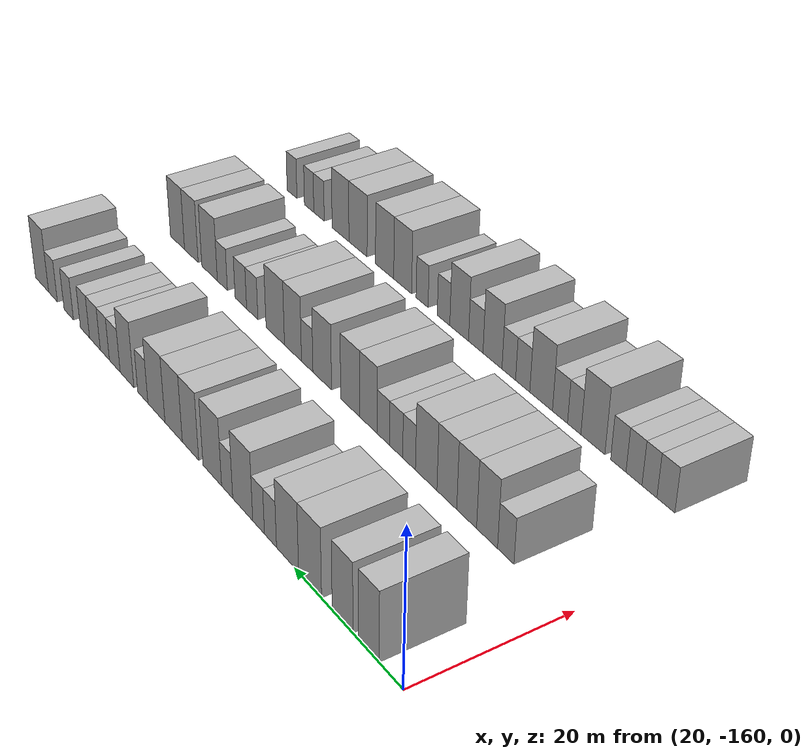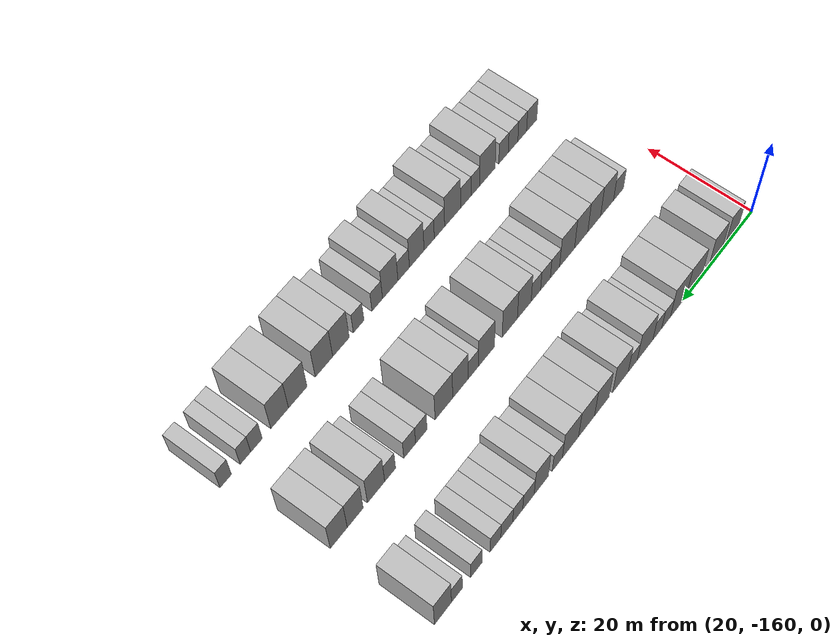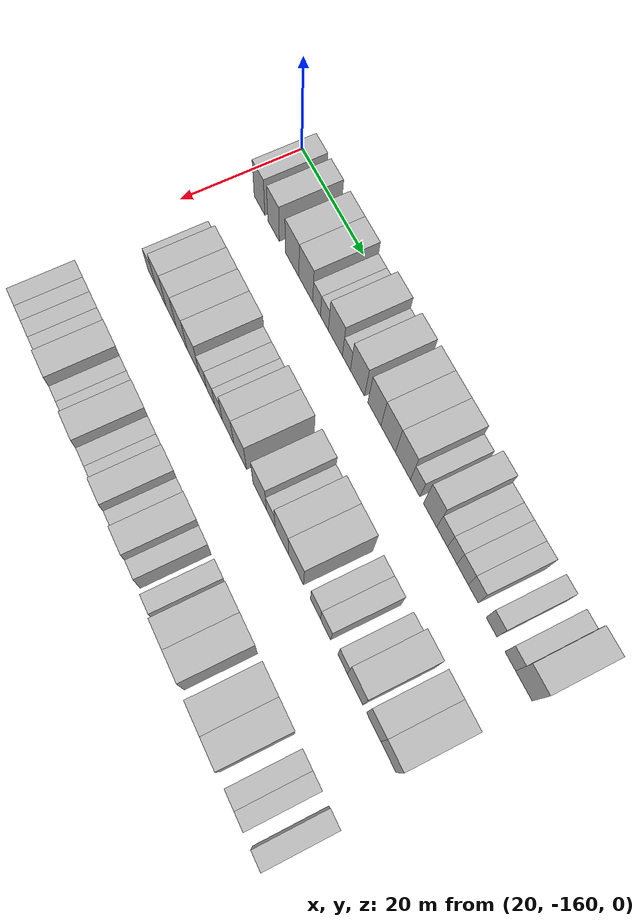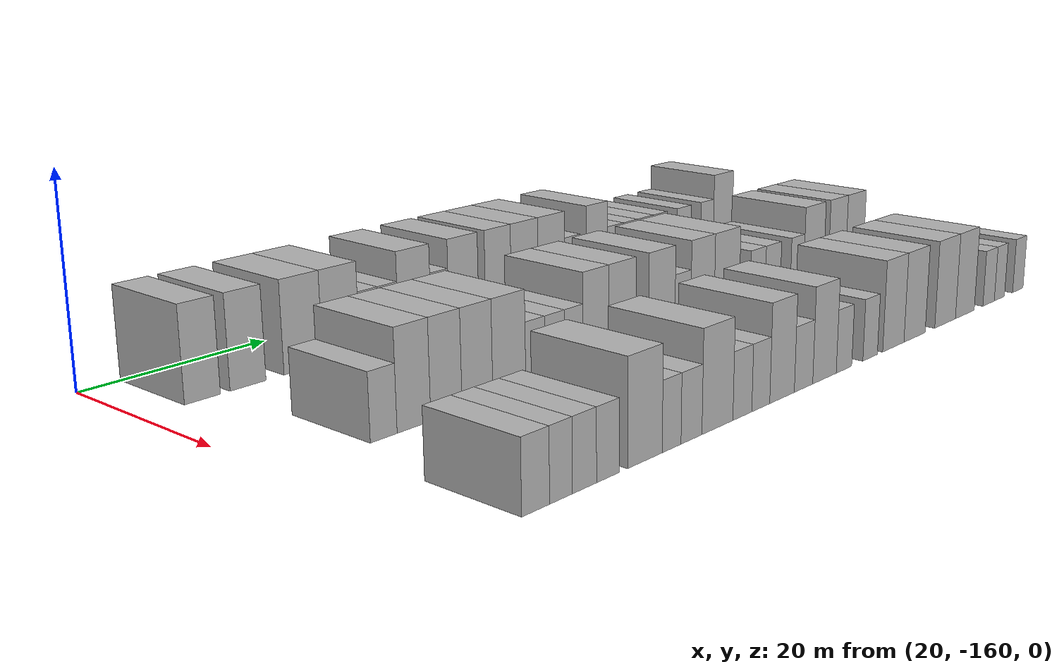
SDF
<sdf version="1.6">
 <world name="default">
  <model name="building_21">
   <static>1</static>
   <pose>25.0000 -153.9046 0 0.000000 0.000000 0.000000</pose>
   <link name="link">
    <pose>0 0 4.50 0 0 0</pose>
    <collision name="collision"><geometry><box><size>10.0000 3.6616 9.0000</size></box></geometry></collision>
    <visual name="visual">
     <cast_shadows>0</cast_shadows>
     <geometry><box><size>10.0000 3.6616 9.0000</size></box></geometry>
     <material>
      <script>
       <uri>model://HANNAS_wall/materials/scripts</uri>
       <uri>model://HANNAS_wall/materials/textures</uri>
       <name>vrc/HANNAS_wall</name>
      </script>
     </material>
    </visual>
   </link>
  </model>
  <model name="building_22">
   <static>1</static>
   <pose>25.0000 -149.1466 0 0.000000 0.000000 0.000000</pose>
   <link name="link">
    <pose>0 0 4.50 0 0 0</pose>
    <collision name="collision"><geometry><box><size>10.0000 3.8543 9.0000</size></box></geometry></collision>
    <visual name="visual">
     <cast_shadows>0</cast_shadows>
     <geometry><box><size>10.0000 3.8543 9.0000</size></box></geometry>
     <material>
      <script>
       <uri>model://HANNAS_wall/materials/scripts</uri>
       <uri>model://HANNAS_wall/materials/textures</uri>
       <name>vrc/HANNAS_wall</name>
      </script>
     </material>
    </visual>
   </link>
  </model>
  <model name="building_23">
   <static>1</static>
   <pose>25.0000 -142.9909 0 0.000000 0.000000 0.000000</pose>
   <link name="link">
    <pose>0 0 4.50 0 0 0</pose>
    <collision name="collision"><geometry><box><size>10.0000 4.4572 9.0000</size></box></geometry></collision>
    <visual name="visual">
     <cast_shadows>0</cast_shadows>
     <geometry><box><size>10.0000 4.4572 9.0000</size></box></geometry>
     <material>
      <script>
       <uri>model://HANNAS_wall/materials/scripts</uri>
       <uri>model://HANNAS_wall/materials/textures</uri>
       <name>vrc/HANNAS_wall</name>
      </script>
     </material>
    </visual>
   </link>
  </model>
  <model name="building_24">
   <static>1</static>
   <pose>25.0000 -138.5390 0 0.000000 0.000000 0.000000</pose>
   <link name="link">
    <pose>0 0 4.50 0 0 0</pose>
    <collision name="collision"><geometry><box><size>10.0000 4.4466 9.0000</size></box></geometry></collision>
    <visual name="visual">
     <cast_shadows>0</cast_shadows>
     <geometry><box><size>10.0000 4.4466 9.0000</size></box></geometry>
     <material>
      <script>
       <uri>model://HANNAS_wall/materials/scripts</uri>
       <uri>model://HANNAS_wall/materials/textures</uri>
       <name>vrc/HANNAS_wall</name>
      </script>
     </material>
    </visual>
   </link>
  </model>
  <model name="building_25">
   <static>1</static>
   <pose>25.0000 -135.0715 0 0.000000 0.000000 0.000000</pose>
   <link name="link">
    <pose>0 0 3.00 0 0 0</pose>
    <collision name="collision"><geometry><box><size>10.0000 2.4883 6.0000</size></box></geometry></collision>
    <visual name="visual">
     <cast_shadows>0</cast_shadows>
     <geometry><box><size>10.0000 2.4883 6.0000</size></box></geometry>
     <material>
      <script>
       <uri>model://HANNAS_wall/materials/scripts</uri>
       <uri>model://HANNAS_wall/materials/textures</uri>
       <name>vrc/HANNAS_wall</name>
      </script>
     </material>
    </visual>
   </link>
  </model>
  <model name="building_26">
   <static>1</static>
   <pose>25.0000 -132.5944 0 0.000000 0.000000 0.000000</pose>
   <link name="link">
    <pose>0 0 3.00 0 0 0</pose>
    <collision name="collision"><geometry><box><size>10.0000 2.4660 6.0000</size></box></geometry></collision>
    <visual name="visual">
     <cast_shadows>0</cast_shadows>
     <geometry><box><size>10.0000 2.4660 6.0000</size></box></geometry>
     <material>
      <script>
       <uri>model://HANNAS_wall/materials/scripts</uri>
       <uri>model://HANNAS_wall/materials/textures</uri>
       <name>vrc/HANNAS_wall</name>
      </script>
     </material>
    </visual>
   </link>
  </model>
  <model name="building_27">
   <static>1</static>
   <pose>25.0000 -129.1966 0 0.000000 0.000000 0.000000</pose>
   <link name="link">
    <pose>0 0 4.50 0 0 0</pose>
    <collision name="collision"><geometry><box><size>10.0000 4.3295 9.0000</size></box></geometry></collision>
    <visual name="visual">
     <cast_shadows>0</cast_shadows>
     <geometry><box><size>10.0000 4.3295 9.0000</size></box></geometry>
     <material>
      <script>
       <uri>model://HANNAS_wall/materials/scripts</uri>
       <uri>model://HANNAS_wall/materials/textures</uri>
       <name>vrc/HANNAS_wall</name>
      </script>
     </material>
    </visual>
   </link>
  </model>
  <model name="building_28">
   <static>1</static>
   <pose>25.0000 -125.7980 0 0.000000 0.000000 0.000000</pose>
   <link name="link">
    <pose>0 0 3.00 0 0 0</pose>
    <collision name="collision"><geometry><box><size>10.0000 2.4677 6.0000</size></box></geometry></collision>
    <visual name="visual">
     <cast_shadows>0</cast_shadows>
     <geometry><box><size>10.0000 2.4677 6.0000</size></box></geometry>
     <material>
      <script>
       <uri>model://HANNAS_wall/materials/scripts</uri>
       <uri>model://HANNAS_wall/materials/textures</uri>
       <name>vrc/HANNAS_wall</name>
      </script>
     </material>
    </visual>
   </link>
  </model>
  <model name="building_29">
   <static>1</static>
   <pose>25.0000 -122.4533 0 0.000000 0.000000 0.000000</pose>
   <link name="link">
    <pose>0 0 4.50 0 0 0</pose>
    <collision name="collision"><geometry><box><size>10.0000 4.2217 9.0000</size></box></geometry></collision>
    <visual name="visual">
     <cast_shadows>0</cast_shadows>
     <geometry><box><size>10.0000 4.2217 9.0000</size></box></geometry>
     <material>
      <script>
       <uri>model://HANNAS_wall/materials/scripts</uri>
       <uri>model://HANNAS_wall/materials/textures</uri>
       <name>vrc/HANNAS_wall</name>
      </script>
     </material>
    </visual>
   </link>
  </model>
  <model name="building_30">
   <static>1</static>
   <pose>25.0000 -117.4191 0 0.000000 0.000000 0.000000</pose>
   <link name="link">
    <pose>0 0 4.50 0 0 0</pose>
    <collision name="collision"><geometry><box><size>10.0000 3.8467 9.0000</size></box></geometry></collision>
    <visual name="visual">
     <cast_shadows>0</cast_shadows>
     <geometry><box><size>10.0000 3.8467 9.0000</size></box></geometry>
     <material>
      <script>
       <uri>model://HANNAS_wall/materials/scripts</uri>
       <uri>model://HANNAS_wall/materials/textures</uri>
       <name>vrc/HANNAS_wall</name>
      </script>
     </material>
    </visual>
   </link>
  </model>
  <model name="building_31">
   <static>1</static>
   <pose>25.0000 -113.3922 0 0.000000 0.000000 0.000000</pose>
   <link name="link">
    <pose>0 0 4.50 0 0 0</pose>
    <collision name="collision"><geometry><box><size>10.0000 4.2071 9.0000</size></box></geometry></collision>
    <visual name="visual">
     <cast_shadows>0</cast_shadows>
     <geometry><box><size>10.0000 4.2071 9.0000</size></box></geometry>
     <material>
      <script>
       <uri>model://HANNAS_wall/materials/scripts</uri>
       <uri>model://HANNAS_wall/materials/textures</uri>
       <name>vrc/HANNAS_wall</name>
      </script>
     </material>
    </visual>
   </link>
  </model>
  <model name="building_32">
   <static>1</static>
   <pose>25.0000 -109.1621 0 0.000000 0.000000 0.000000</pose>
   <link name="link">
    <pose>0 0 4.50 0 0 0</pose>
    <collision name="collision"><geometry><box><size>10.0000 4.2531 9.0000</size></box></geometry></collision>
    <visual name="visual">
     <cast_shadows>0</cast_shadows>
     <geometry><box><size>10.0000 4.2531 9.0000</size></box></geometry>
     <material>
      <script>
       <uri>model://HANNAS_wall/materials/scripts</uri>
       <uri>model://HANNAS_wall/materials/textures</uri>
       <name>vrc/HANNAS_wall</name>
      </script>
     </material>
    </visual>
   </link>
  </model>
  <model name="building_33">
   <static>1</static>
   <pose>25.0000 -105.7331 0 0.000000 0.000000 0.000000</pose>
   <link name="link">
    <pose>0 0 3.00 0 0 0</pose>
    <collision name="collision"><geometry><box><size>10.0000 2.6048 6.0000</size></box></geometry></collision>
    <visual name="visual">
     <cast_shadows>0</cast_shadows>
     <geometry><box><size>10.0000 2.6048 6.0000</size></box></geometry>
     <material>
      <script>
       <uri>model://HANNAS_wall/materials/scripts</uri>
       <uri>model://HANNAS_wall/materials/textures</uri>
       <name>vrc/HANNAS_wall</name>
      </script>
     </material>
    </visual>
   </link>
  </model>
  <model name="building_34">
   <static>1</static>
   <pose>25.0000 -101.6226 0 0.000000 0.000000 0.000000</pose>
   <link name="link">
    <pose>0 0 4.50 0 0 0</pose>
    <collision name="collision"><geometry><box><size>10.0000 3.6163 9.0000</size></box></geometry></collision>
    <visual name="visual">
     <cast_shadows>0</cast_shadows>
     <geometry><box><size>10.0000 3.6163 9.0000</size></box></geometry>
     <material>
      <script>
       <uri>model://HANNAS_wall/materials/scripts</uri>
       <uri>model://HANNAS_wall/materials/textures</uri>
       <name>vrc/HANNAS_wall</name>
      </script>
     </material>
    </visual>
   </link>
  </model>
  <model name="building_35">
   <static>1</static>
   <pose>25.0000 -98.3615 0 0.000000 0.000000 0.000000</pose>
   <link name="link">
    <pose>0 0 3.00 0 0 0</pose>
    <collision name="collision"><geometry><box><size>10.0000 2.9057 6.0000</size></box></geometry></collision>
    <visual name="visual">
     <cast_shadows>0</cast_shadows>
     <geometry><box><size>10.0000 2.9057 6.0000</size></box></geometry>
     <material>
      <script>
       <uri>model://HANNAS_wall/materials/scripts</uri>
       <uri>model://HANNAS_wall/materials/textures</uri>
       <name>vrc/HANNAS_wall</name>
      </script>
     </material>
    </visual>
   </link>
  </model>
  <model name="building_36">
   <static>1</static>
   <pose>25.0000 -95.6596 0 0.000000 0.000000 0.000000</pose>
   <link name="link">
    <pose>0 0 3.00 0 0 0</pose>
    <collision name="collision"><geometry><box><size>10.0000 2.4982 6.0000</size></box></geometry></collision>
    <visual name="visual">
     <cast_shadows>0</cast_shadows>
     <geometry><box><size>10.0000 2.4982 6.0000</size></box></geometry>
     <material>
      <script>
       <uri>model://HANNAS_wall/materials/scripts</uri>
       <uri>model://HANNAS_wall/materials/textures</uri>
       <name>vrc/HANNAS_wall</name>
      </script>
     </material>
    </visual>
   </link>
  </model>
  <model name="building_37">
   <static>1</static>
   <pose>25.0000 -92.9173 0 0.000000 0.000000 0.000000</pose>
   <link name="link">
    <pose>0 0 3.00 0 0 0</pose>
    <collision name="collision"><geometry><box><size>10.0000 2.9864 6.0000</size></box></geometry></collision>
    <visual name="visual">
     <cast_shadows>0</cast_shadows>
     <geometry><box><size>10.0000 2.9864 6.0000</size></box></geometry>
     <material>
      <script>
       <uri>model://HANNAS_wall/materials/scripts</uri>
       <uri>model://HANNAS_wall/materials/textures</uri>
       <name>vrc/HANNAS_wall</name>
      </script>
     </material>
    </visual>
   </link>
  </model>
  <model name="building_38">
   <static>1</static>
   <pose>25.0000 -90.1191 0 0.000000 0.000000 0.000000</pose>
   <link name="link">
    <pose>0 0 3.00 0 0 0</pose>
    <collision name="collision"><geometry><box><size>10.0000 2.6099 6.0000</size></box></geometry></collision>
    <visual name="visual">
     <cast_shadows>0</cast_shadows>
     <geometry><box><size>10.0000 2.6099 6.0000</size></box></geometry>
     <material>
      <script>
       <uri>model://HANNAS_wall/materials/scripts</uri>
       <uri>model://HANNAS_wall/materials/textures</uri>
       <name>vrc/HANNAS_wall</name>
      </script>
     </material>
    </visual>
   </link>
  </model>
  <model name="building_39">
   <static>1</static>
   <pose>25.0000 -85.4486 0 0.000000 0.000000 0.000000</pose>
   <link name="link">
    <pose>0 0 3.00 0 0 0</pose>
    <collision name="collision"><geometry><box><size>10.0000 2.7311 6.0000</size></box></geometry></collision>
    <visual name="visual">
     <cast_shadows>0</cast_shadows>
     <geometry><box><size>10.0000 2.7311 6.0000</size></box></geometry>
     <material>
      <script>
       <uri>model://HANNAS_wall/materials/scripts</uri>
       <uri>model://HANNAS_wall/materials/textures</uri>
       <name>vrc/HANNAS_wall</name>
      </script>
     </material>
    </visual>
   </link>
  </model>
  <model name="building_40">
   <static>1</static>
   <pose>25.0000 -80.7686 0 0.000000 0.000000 0.000000</pose>
   <link name="link">
    <pose>0 0 3.00 0 0 0</pose>
    <collision name="collision"><geometry><box><size>10.0000 2.6290 6.0000</size></box></geometry></collision>
    <visual name="visual">
     <cast_shadows>0</cast_shadows>
     <geometry><box><size>10.0000 2.6290 6.0000</size></box></geometry>
     <material>
      <script>
       <uri>model://HANNAS_wall/materials/scripts</uri>
       <uri>model://HANNAS_wall/materials/textures</uri>
       <name>vrc/HANNAS_wall</name>
      </script>
     </material>
    </visual>
   </link>
  </model>
  <model name="building_41">
   <static>1</static>
   <pose>25.0000 -77.4401 0 0.000000 0.000000 0.000000</pose>
   <link name="link">
    <pose>0 0 4.50 0 0 0</pose>
    <collision name="collision"><geometry><box><size>10.0000 4.0280 9.0000</size></box></geometry></collision>
    <visual name="visual">
     <cast_shadows>0</cast_shadows>
     <geometry><box><size>10.0000 4.0280 9.0000</size></box></geometry>
     <material>
      <script>
       <uri>model://HANNAS_wall/materials/scripts</uri>
       <uri>model://HANNAS_wall/materials/textures</uri>
       <name>vrc/HANNAS_wall</name>
      </script>
     </material>
    </visual>
   </link>
  </model>
  <model name="building_144">
   <static>1</static>
   <pose>44.0000 -149.8450 0 0.000000 0.000000 0.000000</pose>
   <link name="link">
    <pose>0 0 3.00 0 0 0</pose>
    <collision name="collision"><geometry><box><size>10.0000 2.8351 6.0000</size></box></geometry></collision>
    <visual name="visual">
     <cast_shadows>0</cast_shadows>
     <geometry><box><size>10.0000 2.8351 6.0000</size></box></geometry>
     <material>
      <script>
       <uri>model://HANNAS_wall/materials/scripts</uri>
       <uri>model://HANNAS_wall/materials/textures</uri>
       <name>vrc/HANNAS_wall</name>
      </script>
     </material>
    </visual>
   </link>
  </model>
  <model name="building_145">
   <static>1</static>
   <pose>44.0000 -146.5747 0 0.000000 0.000000 0.000000</pose>
   <link name="link">
    <pose>0 0 4.50 0 0 0</pose>
    <collision name="collision"><geometry><box><size>10.0000 3.7054 9.0000</size></box></geometry></collision>
    <visual name="visual">
     <cast_shadows>0</cast_shadows>
     <geometry><box><size>10.0000 3.7054 9.0000</size></box></geometry>
     <material>
      <script>
       <uri>model://HANNAS_wall/materials/scripts</uri>
       <uri>model://HANNAS_wall/materials/textures</uri>
       <name>vrc/HANNAS_wall</name>
      </script>
     </material>
    </visual>
   </link>
  </model>
  <model name="building_146">
   <static>1</static>
   <pose>44.0000 -142.9186 0 0.000000 0.000000 0.000000</pose>
   <link name="link">
    <pose>0 0 4.50 0 0 0</pose>
    <collision name="collision"><geometry><box><size>10.0000 3.6069 9.0000</size></box></geometry></collision>
    <visual name="visual">
     <cast_shadows>0</cast_shadows>
     <geometry><box><size>10.0000 3.6069 9.0000</size></box></geometry>
     <material>
      <script>
       <uri>model://HANNAS_wall/materials/scripts</uri>
       <uri>model://HANNAS_wall/materials/textures</uri>
       <name>vrc/HANNAS_wall</name>
      </script>
     </material>
    </visual>
   </link>
  </model>
  <model name="building_147">
   <static>1</static>
   <pose>44.0000 -139.2673 0 0.000000 0.000000 0.000000</pose>
   <link name="link">
    <pose>0 0 4.50 0 0 0</pose>
    <collision name="collision"><geometry><box><size>10.0000 3.6957 9.0000</size></box></geometry></collision>
    <visual name="visual">
     <cast_shadows>0</cast_shadows>
     <geometry><box><size>10.0000 3.6957 9.0000</size></box></geometry>
     <material>
      <script>
       <uri>model://HANNAS_wall/materials/scripts</uri>
       <uri>model://HANNAS_wall/materials/textures</uri>
       <name>vrc/HANNAS_wall</name>
      </script>
     </material>
    </visual>
   </link>
  </model>
  <model name="building_148">
   <static>1</static>
   <pose>44.0000 -135.3502 0 0.000000 0.000000 0.000000</pose>
   <link name="link">
    <pose>0 0 4.50 0 0 0</pose>
    <collision name="collision"><geometry><box><size>10.0000 4.1385 9.0000</size></box></geometry></collision>
    <visual name="visual">
     <cast_shadows>0</cast_shadows>
     <geometry><box><size>10.0000 4.1385 9.0000</size></box></geometry>
     <material>
      <script>
       <uri>model://HANNAS_wall/materials/scripts</uri>
       <uri>model://HANNAS_wall/materials/textures</uri>
       <name>vrc/HANNAS_wall</name>
      </script>
     </material>
    </visual>
   </link>
  </model>
  <model name="building_149">
   <static>1</static>
   <pose>44.0000 -132.0215 0 0.000000 0.000000 0.000000</pose>
   <link name="link">
    <pose>0 0 3.00 0 0 0</pose>
    <collision name="collision"><geometry><box><size>10.0000 2.5189 6.0000</size></box></geometry></collision>
    <visual name="visual">
     <cast_shadows>0</cast_shadows>
     <geometry><box><size>10.0000 2.5189 6.0000</size></box></geometry>
     <material>
      <script>
       <uri>model://HANNAS_wall/materials/scripts</uri>
       <uri>model://HANNAS_wall/materials/textures</uri>
       <name>vrc/HANNAS_wall</name>
      </script>
     </material>
    </visual>
   </link>
  </model>
  <model name="building_150">
   <static>1</static>
   <pose>44.0000 -129.4367 0 0.000000 0.000000 0.000000</pose>
   <link name="link">
    <pose>0 0 3.00 0 0 0</pose>
    <collision name="collision"><geometry><box><size>10.0000 2.6507 6.0000</size></box></geometry></collision>
    <visual name="visual">
     <cast_shadows>0</cast_shadows>
     <geometry><box><size>10.0000 2.6507 6.0000</size></box></geometry>
     <material>
      <script>
       <uri>model://HANNAS_wall/materials/scripts</uri>
       <uri>model://HANNAS_wall/materials/textures</uri>
       <name>vrc/HANNAS_wall</name>
      </script>
     </material>
    </visual>
   </link>
  </model>
  <model name="building_151">
   <static>1</static>
   <pose>44.0000 -126.8342 0 0.000000 0.000000 0.000000</pose>
   <link name="link">
    <pose>0 0 3.00 0 0 0</pose>
    <collision name="collision"><geometry><box><size>10.0000 2.5543 6.0000</size></box></geometry></collision>
    <visual name="visual">
     <cast_shadows>0</cast_shadows>
     <geometry><box><size>10.0000 2.5543 6.0000</size></box></geometry>
     <material>
      <script>
       <uri>model://HANNAS_wall/materials/scripts</uri>
       <uri>model://HANNAS_wall/materials/textures</uri>
       <name>vrc/HANNAS_wall</name>
      </script>
     </material>
    </visual>
   </link>
  </model>
  <model name="building_152">
   <static>1</static>
   <pose>44.0000 -123.7245 0 0.000000 0.000000 0.000000</pose>
   <link name="link">
    <pose>0 0 4.50 0 0 0</pose>
    <collision name="collision"><geometry><box><size>10.0000 3.6650 9.0000</size></box></geometry></collision>
    <visual name="visual">
     <cast_shadows>0</cast_shadows>
     <geometry><box><size>10.0000 3.6650 9.0000</size></box></geometry>
     <material>
      <script>
       <uri>model://HANNAS_wall/materials/scripts</uri>
       <uri>model://HANNAS_wall/materials/textures</uri>
       <name>vrc/HANNAS_wall</name>
      </script>
     </material>
    </visual>
   </link>
  </model>
  <model name="building_153">
   <static>1</static>
   <pose>44.0000 -119.8804 0 0.000000 0.000000 0.000000</pose>
   <link name="link">
    <pose>0 0 4.50 0 0 0</pose>
    <collision name="collision"><geometry><box><size>10.0000 4.0232 9.0000</size></box></geometry></collision>
    <visual name="visual">
     <cast_shadows>0</cast_shadows>
     <geometry><box><size>10.0000 4.0232 9.0000</size></box></geometry>
     <material>
      <script>
       <uri>model://HANNAS_wall/materials/scripts</uri>
       <uri>model://HANNAS_wall/materials/textures</uri>
       <name>vrc/HANNAS_wall</name>
      </script>
     </material>
    </visual>
   </link>
  </model>
  <model name="building_154">
   <static>1</static>
   <pose>44.0000 -113.7887 0 0.000000 0.000000 0.000000</pose>
   <link name="link">
    <pose>0 0 4.50 0 0 0</pose>
    <collision name="collision"><geometry><box><size>10.0000 4.1601 9.0000</size></box></geometry></collision>
    <visual name="visual">
     <cast_shadows>0</cast_shadows>
     <geometry><box><size>10.0000 4.1601 9.0000</size></box></geometry>
     <material>
      <script>
       <uri>model://HANNAS_wall/materials/scripts</uri>
       <uri>model://HANNAS_wall/materials/textures</uri>
       <name>vrc/HANNAS_wall</name>
      </script>
     </material>
    </visual>
   </link>
  </model>
  <model name="building_155">
   <static>1</static>
   <pose>44.0000 -110.4009 0 0.000000 0.000000 0.000000</pose>
   <link name="link">
    <pose>0 0 3.00 0 0 0</pose>
    <collision name="collision"><geometry><box><size>10.0000 2.6155 6.0000</size></box></geometry></collision>
    <visual name="visual">
     <cast_shadows>0</cast_shadows>
     <geometry><box><size>10.0000 2.6155 6.0000</size></box></geometry>
     <material>
      <script>
       <uri>model://HANNAS_wall/materials/scripts</uri>
       <uri>model://HANNAS_wall/materials/textures</uri>
       <name>vrc/HANNAS_wall</name>
      </script>
     </material>
    </visual>
   </link>
  </model>
  <model name="building_156">
   <static>1</static>
   <pose>44.0000 -107.1032 0 0.000000 0.000000 0.000000</pose>
   <link name="link">
    <pose>0 0 4.50 0 0 0</pose>
    <collision name="collision"><geometry><box><size>10.0000 3.9799 9.0000</size></box></geometry></collision>
    <visual name="visual">
     <cast_shadows>0</cast_shadows>
     <geometry><box><size>10.0000 3.9799 9.0000</size></box></geometry>
     <material>
      <script>
       <uri>model://HANNAS_wall/materials/scripts</uri>
       <uri>model://HANNAS_wall/materials/textures</uri>
       <name>vrc/HANNAS_wall</name>
      </script>
     </material>
    </visual>
   </link>
  </model>
  <model name="building_157">
   <static>1</static>
   <pose>44.0000 -102.8934 0 0.000000 0.000000 0.000000</pose>
   <link name="link">
    <pose>0 0 4.50 0 0 0</pose>
    <collision name="collision"><geometry><box><size>10.0000 4.4398 9.0000</size></box></geometry></collision>
    <visual name="visual">
     <cast_shadows>0</cast_shadows>
     <geometry><box><size>10.0000 4.4398 9.0000</size></box></geometry>
     <material>
      <script>
       <uri>model://HANNAS_wall/materials/scripts</uri>
       <uri>model://HANNAS_wall/materials/textures</uri>
       <name>vrc/HANNAS_wall</name>
      </script>
     </material>
    </visual>
   </link>
  </model>
  <model name="building_158">
   <static>1</static>
   <pose>44.0000 -97.2598 0 0.000000 0.000000 0.000000</pose>
   <link name="link">
    <pose>0 0 3.00 0 0 0</pose>
    <collision name="collision"><geometry><box><size>10.0000 2.8273 6.0000</size></box></geometry></collision>
    <visual name="visual">
     <cast_shadows>0</cast_shadows>
     <geometry><box><size>10.0000 2.8273 6.0000</size></box></geometry>
     <material>
      <script>
       <uri>model://HANNAS_wall/materials/scripts</uri>
       <uri>model://HANNAS_wall/materials/textures</uri>
       <name>vrc/HANNAS_wall</name>
      </script>
     </material>
    </visual>
   </link>
  </model>
  <model name="building_159">
   <static>1</static>
   <pose>44.0000 -94.3902 0 0.000000 0.000000 0.000000</pose>
   <link name="link">
    <pose>0 0 3.00 0 0 0</pose>
    <collision name="collision"><geometry><box><size>10.0000 2.9119 6.0000</size></box></geometry></collision>
    <visual name="visual">
     <cast_shadows>0</cast_shadows>
     <geometry><box><size>10.0000 2.9119 6.0000</size></box></geometry>
     <material>
      <script>
       <uri>model://HANNAS_wall/materials/scripts</uri>
       <uri>model://HANNAS_wall/materials/textures</uri>
       <name>vrc/HANNAS_wall</name>
      </script>
     </material>
    </visual>
   </link>
  </model>
  <model name="building_160">
   <static>1</static>
   <pose>44.0000 -89.6149 0 0.000000 0.000000 0.000000</pose>
   <link name="link">
    <pose>0 0 3.00 0 0 0</pose>
    <collision name="collision"><geometry><box><size>10.0000 2.6387 6.0000</size></box></geometry></collision>
    <visual name="visual">
     <cast_shadows>0</cast_shadows>
     <geometry><box><size>10.0000 2.6387 6.0000</size></box></geometry>
     <material>
      <script>
       <uri>model://HANNAS_wall/materials/scripts</uri>
       <uri>model://HANNAS_wall/materials/textures</uri>
       <name>vrc/HANNAS_wall</name>
      </script>
     </material>
    </visual>
   </link>
  </model>
  <model name="building_161">
   <static>1</static>
   <pose>44.0000 -86.2224 0 0.000000 0.000000 0.000000</pose>
   <link name="link">
    <pose>0 0 4.50 0 0 0</pose>
    <collision name="collision"><geometry><box><size>10.0000 4.1462 9.0000</size></box></geometry></collision>
    <visual name="visual">
     <cast_shadows>0</cast_shadows>
     <geometry><box><size>10.0000 4.1462 9.0000</size></box></geometry>
     <material>
      <script>
       <uri>model://HANNAS_wall/materials/scripts</uri>
       <uri>model://HANNAS_wall/materials/textures</uri>
       <name>vrc/HANNAS_wall</name>
      </script>
     </material>
    </visual>
   </link>
  </model>
  <model name="building_162">
   <static>1</static>
   <pose>44.0000 -81.2729 0 0.000000 0.000000 0.000000</pose>
   <link name="link">
    <pose>0 0 4.50 0 0 0</pose>
    <collision name="collision"><geometry><box><size>10.0000 3.7529 9.0000</size></box></geometry></collision>
    <visual name="visual">
     <cast_shadows>0</cast_shadows>
     <geometry><box><size>10.0000 3.7529 9.0000</size></box></geometry>
     <material>
      <script>
       <uri>model://HANNAS_wall/materials/scripts</uri>
       <uri>model://HANNAS_wall/materials/textures</uri>
       <name>vrc/HANNAS_wall</name>
      </script>
     </material>
    </visual>
   </link>
  </model>
  <model name="building_163">
   <static>1</static>
   <pose>44.0000 -77.4085 0 0.000000 0.000000 0.000000</pose>
   <link name="link">
    <pose>0 0 4.50 0 0 0</pose>
    <collision name="collision"><geometry><box><size>10.0000 3.9760 9.0000</size></box></geometry></collision>
    <visual name="visual">
     <cast_shadows>0</cast_shadows>
     <geometry><box><size>10.0000 3.9760 9.0000</size></box></geometry>
     <material>
      <script>
       <uri>model://HANNAS_wall/materials/scripts</uri>
       <uri>model://HANNAS_wall/materials/textures</uri>
       <name>vrc/HANNAS_wall</name>
      </script>
     </material>
    </visual>
   </link>
  </model>
  <model name="building_272">
   <static>1</static>
   <pose>63.0000 -152.2434 0 0.000000 0.000000 0.000000</pose>
   <link name="link">
    <pose>0 0 3.00 0 0 0</pose>
    <collision name="collision"><geometry><box><size>10.0000 2.9052 6.0000</size></box></geometry></collision>
    <visual name="visual">
     <cast_shadows>0</cast_shadows>
     <geometry><box><size>10.0000 2.9052 6.0000</size></box></geometry>
     <material>
      <script>
       <uri>model://HANNAS_wall/materials/scripts</uri>
       <uri>model://HANNAS_wall/materials/textures</uri>
       <name>vrc/HANNAS_wall</name>
      </script>
     </material>
    </visual>
   </link>
  </model>
  <model name="building_273">
   <static>1</static>
   <pose>63.0000 -149.5623 0 0.000000 0.000000 0.000000</pose>
   <link name="link">
    <pose>0 0 3.00 0 0 0</pose>
    <collision name="collision"><geometry><box><size>10.0000 2.4570 6.0000</size></box></geometry></collision>
    <visual name="visual">
     <cast_shadows>0</cast_shadows>
     <geometry><box><size>10.0000 2.4570 6.0000</size></box></geometry>
     <material>
      <script>
       <uri>model://HANNAS_wall/materials/scripts</uri>
       <uri>model://HANNAS_wall/materials/textures</uri>
       <name>vrc/HANNAS_wall</name>
      </script>
     </material>
    </visual>
   </link>
  </model>
  <model name="building_274">
   <static>1</static>
   <pose>63.0000 -146.9913 0 0.000000 0.000000 0.000000</pose>
   <link name="link">
    <pose>0 0 3.00 0 0 0</pose>
    <collision name="collision"><geometry><box><size>10.0000 2.6850 6.0000</size></box></geometry></collision>
    <visual name="visual">
     <cast_shadows>0</cast_shadows>
     <geometry><box><size>10.0000 2.6850 6.0000</size></box></geometry>
     <material>
      <script>
       <uri>model://HANNAS_wall/materials/scripts</uri>
       <uri>model://HANNAS_wall/materials/textures</uri>
       <name>vrc/HANNAS_wall</name>
      </script>
     </material>
    </visual>
   </link>
  </model>
  <model name="building_275">
   <static>1</static>
   <pose>63.0000 -144.3361 0 0.000000 0.000000 0.000000</pose>
   <link name="link">
    <pose>0 0 3.00 0 0 0</pose>
    <collision name="collision"><geometry><box><size>10.0000 2.6254 6.0000</size></box></geometry></collision>
    <visual name="visual">
     <cast_shadows>0</cast_shadows>
     <geometry><box><size>10.0000 2.6254 6.0000</size></box></geometry>
     <material>
      <script>
       <uri>model://HANNAS_wall/materials/scripts</uri>
       <uri>model://HANNAS_wall/materials/textures</uri>
       <name>vrc/HANNAS_wall</name>
      </script>
     </material>
    </visual>
   </link>
  </model>
  <model name="building_276">
   <static>1</static>
   <pose>63.0000 -139.9013 0 0.000000 0.000000 0.000000</pose>
   <link name="link">
    <pose>0 0 4.50 0 0 0</pose>
    <collision name="collision"><geometry><box><size>10.0000 4.2442 9.0000</size></box></geometry></collision>
    <visual name="visual">
     <cast_shadows>0</cast_shadows>
     <geometry><box><size>10.0000 4.2442 9.0000</size></box></geometry>
     <material>
      <script>
       <uri>model://HANNAS_wall/materials/scripts</uri>
       <uri>model://HANNAS_wall/materials/textures</uri>
       <name>vrc/HANNAS_wall</name>
      </script>
     </material>
    </visual>
   </link>
  </model>
  <model name="building_277">
   <static>1</static>
   <pose>63.0000 -136.5740 0 0.000000 0.000000 0.000000</pose>
   <link name="link">
    <pose>0 0 3.00 0 0 0</pose>
    <collision name="collision"><geometry><box><size>10.0000 2.4103 6.0000</size></box></geometry></collision>
    <visual name="visual">
     <cast_shadows>0</cast_shadows>
     <geometry><box><size>10.0000 2.4103 6.0000</size></box></geometry>
     <material>
      <script>
       <uri>model://HANNAS_wall/materials/scripts</uri>
       <uri>model://HANNAS_wall/materials/textures</uri>
       <name>vrc/HANNAS_wall</name>
      </script>
     </material>
    </visual>
   </link>
  </model>
  <model name="building_278">
   <static>1</static>
   <pose>63.0000 -133.9805 0 0.000000 0.000000 0.000000</pose>
   <link name="link">
    <pose>0 0 3.00 0 0 0</pose>
    <collision name="collision"><geometry><box><size>10.0000 2.7767 6.0000</size></box></geometry></collision>
    <visual name="visual">
     <cast_shadows>0</cast_shadows>
     <geometry><box><size>10.0000 2.7767 6.0000</size></box></geometry>
     <material>
      <script>
       <uri>model://HANNAS_wall/materials/scripts</uri>
       <uri>model://HANNAS_wall/materials/textures</uri>
       <name>vrc/HANNAS_wall</name>
      </script>
     </material>
    </visual>
   </link>
  </model>
  <model name="building_279">
   <static>1</static>
   <pose>63.0000 -130.4479 0 0.000000 0.000000 0.000000</pose>
   <link name="link">
    <pose>0 0 4.50 0 0 0</pose>
    <collision name="collision"><geometry><box><size>10.0000 4.2885 9.0000</size></box></geometry></collision>
    <visual name="visual">
     <cast_shadows>0</cast_shadows>
     <geometry><box><size>10.0000 4.2885 9.0000</size></box></geometry>
     <material>
      <script>
       <uri>model://HANNAS_wall/materials/scripts</uri>
       <uri>model://HANNAS_wall/materials/textures</uri>
       <name>vrc/HANNAS_wall</name>
      </script>
     </material>
    </visual>
   </link>
  </model>
  <model name="building_280">
   <static>1</static>
   <pose>63.0000 -126.9347 0 0.000000 0.000000 0.000000</pose>
   <link name="link">
    <pose>0 0 3.00 0 0 0</pose>
    <collision name="collision"><geometry><box><size>10.0000 2.7380 6.0000</size></box></geometry></collision>
    <visual name="visual">
     <cast_shadows>0</cast_shadows>
     <geometry><box><size>10.0000 2.7380 6.0000</size></box></geometry>
     <material>
      <script>
       <uri>model://HANNAS_wall/materials/scripts</uri>
       <uri>model://HANNAS_wall/materials/textures</uri>
       <name>vrc/HANNAS_wall</name>
      </script>
     </material>
    </visual>
   </link>
  </model>
  <model name="building_281">
   <static>1</static>
   <pose>63.0000 -124.2241 0 0.000000 0.000000 0.000000</pose>
   <link name="link">
    <pose>0 0 3.00 0 0 0</pose>
    <collision name="collision"><geometry><box><size>10.0000 2.6832 6.0000</size></box></geometry></collision>
    <visual name="visual">
     <cast_shadows>0</cast_shadows>
     <geometry><box><size>10.0000 2.6832 6.0000</size></box></geometry>
     <material>
      <script>
       <uri>model://HANNAS_wall/materials/scripts</uri>
       <uri>model://HANNAS_wall/materials/textures</uri>
       <name>vrc/HANNAS_wall</name>
      </script>
     </material>
    </visual>
   </link>
  </model>
  <model name="building_282">
   <static>1</static>
   <pose>63.0000 -120.9701 0 0.000000 0.000000 0.000000</pose>
   <link name="link">
    <pose>0 0 4.50 0 0 0</pose>
    <collision name="collision"><geometry><box><size>10.0000 3.8248 9.0000</size></box></geometry></collision>
    <visual name="visual">
     <cast_shadows>0</cast_shadows>
     <geometry><box><size>10.0000 3.8248 9.0000</size></box></geometry>
     <material>
      <script>
       <uri>model://HANNAS_wall/materials/scripts</uri>
       <uri>model://HANNAS_wall/materials/textures</uri>
       <name>vrc/HANNAS_wall</name>
      </script>
     </material>
    </visual>
   </link>
  </model>
  <model name="building_283">
   <static>1</static>
   <pose>63.0000 -117.5723 0 0.000000 0.000000 0.000000</pose>
   <link name="link">
    <pose>0 0 3.00 0 0 0</pose>
    <collision name="collision"><geometry><box><size>10.0000 2.9707 6.0000</size></box></geometry></collision>
    <visual name="visual">
     <cast_shadows>0</cast_shadows>
     <geometry><box><size>10.0000 2.9707 6.0000</size></box></geometry>
     <material>
      <script>
       <uri>model://HANNAS_wall/materials/scripts</uri>
       <uri>model://HANNAS_wall/materials/textures</uri>
       <name>vrc/HANNAS_wall</name>
      </script>
     </material>
    </visual>
   </link>
  </model>
  <model name="building_284">
   <static>1</static>
   <pose>63.0000 -114.1075 0 0.000000 0.000000 0.000000</pose>
   <link name="link">
    <pose>0 0 4.50 0 0 0</pose>
    <collision name="collision"><geometry><box><size>10.0000 3.9590 9.0000</size></box></geometry></collision>
    <visual name="visual">
     <cast_shadows>0</cast_shadows>
     <geometry><box><size>10.0000 3.9590 9.0000</size></box></geometry>
     <material>
      <script>
       <uri>model://HANNAS_wall/materials/scripts</uri>
       <uri>model://HANNAS_wall/materials/textures</uri>
       <name>vrc/HANNAS_wall</name>
      </script>
     </material>
    </visual>
   </link>
  </model>
  <model name="building_285">
   <static>1</static>
   <pose>63.0000 -110.7795 0 0.000000 0.000000 0.000000</pose>
   <link name="link">
    <pose>0 0 3.00 0 0 0</pose>
    <collision name="collision"><geometry><box><size>10.0000 2.6970 6.0000</size></box></geometry></collision>
    <visual name="visual">
     <cast_shadows>0</cast_shadows>
     <geometry><box><size>10.0000 2.6970 6.0000</size></box></geometry>
     <material>
      <script>
       <uri>model://HANNAS_wall/materials/scripts</uri>
       <uri>model://HANNAS_wall/materials/textures</uri>
       <name>vrc/HANNAS_wall</name>
      </script>
     </material>
    </visual>
   </link>
  </model>
  <model name="building_286">
   <static>1</static>
   <pose>63.0000 -106.0964 0 0.000000 0.000000 0.000000</pose>
   <link name="link">
    <pose>0 0 3.00 0 0 0</pose>
    <collision name="collision"><geometry><box><size>10.0000 2.6691 6.0000</size></box></geometry></collision>
    <visual name="visual">
     <cast_shadows>0</cast_shadows>
     <geometry><box><size>10.0000 2.6691 6.0000</size></box></geometry>
     <material>
      <script>
       <uri>model://HANNAS_wall/materials/scripts</uri>
       <uri>model://HANNAS_wall/materials/textures</uri>
       <name>vrc/HANNAS_wall</name>
      </script>
     </material>
    </visual>
   </link>
  </model>
  <model name="building_287">
   <static>1</static>
   <pose>63.0000 -101.7178 0 0.000000 0.000000 0.000000</pose>
   <link name="link">
    <pose>0 0 4.50 0 0 0</pose>
    <collision name="collision"><geometry><box><size>10.0000 4.0882 9.0000</size></box></geometry></collision>
    <visual name="visual">
     <cast_shadows>0</cast_shadows>
     <geometry><box><size>10.0000 4.0882 9.0000</size></box></geometry>
     <material>
      <script>
       <uri>model://HANNAS_wall/materials/scripts</uri>
       <uri>model://HANNAS_wall/materials/textures</uri>
       <name>vrc/HANNAS_wall</name>
      </script>
     </material>
    </visual>
   </link>
  </model>
  <model name="building_288">
   <static>1</static>
   <pose>63.0000 -97.5411 0 0.000000 0.000000 0.000000</pose>
   <link name="link">
    <pose>0 0 4.50 0 0 0</pose>
    <collision name="collision"><geometry><box><size>10.0000 4.2651 9.0000</size></box></geometry></collision>
    <visual name="visual">
     <cast_shadows>0</cast_shadows>
     <geometry><box><size>10.0000 4.2651 9.0000</size></box></geometry>
     <material>
      <script>
       <uri>model://HANNAS_wall/materials/scripts</uri>
       <uri>model://HANNAS_wall/materials/textures</uri>
       <name>vrc/HANNAS_wall</name>
      </script>
     </material>
    </visual>
   </link>
  </model>
  <model name="building_289">
   <static>1</static>
   <pose>63.0000 -91.1947 0 0.000000 0.000000 0.000000</pose>
   <link name="link">
    <pose>0 0 4.50 0 0 0</pose>
    <collision name="collision"><geometry><box><size>10.0000 4.4277 9.0000</size></box></geometry></collision>
    <visual name="visual">
     <cast_shadows>0</cast_shadows>
     <geometry><box><size>10.0000 4.4277 9.0000</size></box></geometry>
     <material>
      <script>
       <uri>model://HANNAS_wall/materials/scripts</uri>
       <uri>model://HANNAS_wall/materials/textures</uri>
       <name>vrc/HANNAS_wall</name>
      </script>
     </material>
    </visual>
   </link>
  </model>
  <model name="building_290">
   <static>1</static>
   <pose>63.0000 -86.8741 0 0.000000 0.000000 0.000000</pose>
   <link name="link">
    <pose>0 0 4.50 0 0 0</pose>
    <collision name="collision"><geometry><box><size>10.0000 4.2136 9.0000</size></box></geometry></collision>
    <visual name="visual">
     <cast_shadows>0</cast_shadows>
     <geometry><box><size>10.0000 4.2136 9.0000</size></box></geometry>
     <material>
      <script>
       <uri>model://HANNAS_wall/materials/scripts</uri>
       <uri>model://HANNAS_wall/materials/textures</uri>
       <name>vrc/HANNAS_wall</name>
      </script>
     </material>
    </visual>
   </link>
  </model>
  <model name="building_291">
   <static>1</static>
   <pose>63.0000 -81.4252 0 0.000000 0.000000 0.000000</pose>
   <link name="link">
    <pose>0 0 3.00 0 0 0</pose>
    <collision name="collision"><geometry><box><size>10.0000 2.6843 6.0000</size></box></geometry></collision>
    <visual name="visual">
     <cast_shadows>0</cast_shadows>
     <geometry><box><size>10.0000 2.6843 6.0000</size></box></geometry>
     <material>
      <script>
       <uri>model://HANNAS_wall/materials/scripts</uri>
       <uri>model://HANNAS_wall/materials/textures</uri>
       <name>vrc/HANNAS_wall</name>
      </script>
     </material>
    </visual>
   </link>
  </model>
  <model name="building_292">
   <static>1</static>
   <pose>63.0000 -78.8555 0 0.000000 0.000000 0.000000</pose>
   <link name="link">
    <pose>0 0 3.00 0 0 0</pose>
    <collision name="collision"><geometry><box><size>10.0000 2.4550 6.0000</size></box></geometry></collision>
    <visual name="visual">
     <cast_shadows>0</cast_shadows>
     <geometry><box><size>10.0000 2.4550 6.0000</size></box></geometry>
     <material>
      <script>
       <uri>model://HANNAS_wall/materials/scripts</uri>
       <uri>model://HANNAS_wall/materials/textures</uri>
       <name>vrc/HANNAS_wall</name>
      </script>
     </material>
    </visual>
   </link>
  </model>
  <model name="building_293">
   <static>1</static>
   <pose>63.0000 -74.3152 0 0.000000 0.000000 0.000000</pose>
   <link name="link">
    <pose>0 0 3.00 0 0 0</pose>
    <collision name="collision"><geometry><box><size>10.0000 2.6257 6.0000</size></box></geometry></collision>
    <visual name="visual">
     <cast_shadows>0</cast_shadows>
     <geometry><box><size>10.0000 2.6257 6.0000</size></box></geometry>
     <material>
      <script>
       <uri>model://HANNAS_wall/materials/scripts</uri>
       <uri>model://HANNAS_wall/materials/textures</uri>
       <name>vrc/HANNAS_wall</name>
      </script>
     </material>
    </visual>
   </link>
  </model>
 </world>
</sdf>
